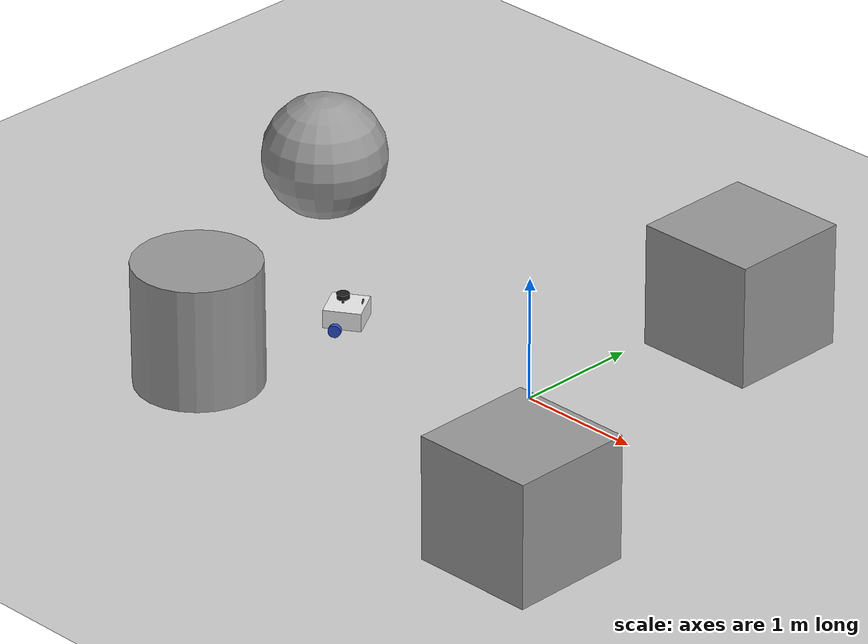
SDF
<sdf version="1.7">
 <world name="default">
  <light name="sun" type="directional">
   <pose>0 0 10 0 -0 0</pose>
   <diffuse>0.8 0.8 0.8 1</diffuse>
   <specular>0.2 0.2 0.2 1</specular>
   <attenuation>
    <range>1000</range>
    <constant>0.9</constant>
    <linear>0.01</linear>
    <quadratic>0.001</quadratic>
   </attenuation>
   <direction>-0.5 0.1 -0.9</direction>
   <spot><inner_angle>0</inner_angle><outer_angle>0</outer_angle><falloff>0</falloff></spot>
  </light>
  <model name="ground_plane">
   <static>1</static>
   <link name="link">
    <collision name="collision">
     <geometry><plane><normal>0 0 1</normal><size>100 100</size></plane></geometry>
     <surface>
      <contact><collide_bitmask>65535</collide_bitmask></contact>
      <friction><ode><mu>100</mu><mu2>50</mu2></ode></friction>
     </surface>
    </collision>
    <visual name="visual">
     <cast_shadows>0</cast_shadows>
     <geometry><plane><normal>0 0 1</normal><size>100 100</size></plane></geometry>
     <material>
      <script><uri>file://media/materials/scripts/gazebo.material</uri><name>Gazebo/Grey</name></script>
     </material>
    </visual>
   </link>
  </model>
  <gravity>0 0 -9.8</gravity>
  <magnetic_field>6e-06 2.3e-05 -4.2e-05</magnetic_field>
  <atmosphere type="adiabatic"/>
  <physics type="ode">
   <max_step_size>0.001</max_step_size>
   <real_time_factor>1</real_time_factor>
   <real_time_update_rate>1000</real_time_update_rate>
  </physics>
  <scene><ambient>0.4 0.4 0.4 1</ambient><background>0.7 0.7 0.7 1</background><shadows>1</shadows></scene>
  <audio><device>default</device></audio>
  <spherical_coordinates>
   <surface_model>EARTH_WGS84</surface_model>
   <latitude_deg>0</latitude_deg>
   <longitude_deg>0</longitude_deg>
   <elevation>0</elevation>
   <heading_deg>0</heading_deg>
  </spherical_coordinates>
  <model name="my_bot">
   <link name="base_link">
    <inertial>
     <pose>0.046885 0 0.09623 0 -0 0</pose>
     <mass>0.61</mass>
     <inertia>
      <ixx>0.00643156</ixx>
      <ixy>0</ixy>
      <ixz>0.000410764</ixz>
      <iyy>0.00658504</iyy>
      <iyz>0</iyz>
      <izz>0.00778848</izz>
     </inertia>
    </inertial>
    <collision name="base_link_fixed_joint_lump__chassis_collision">
     <pose>0.05 0 0.075 0 -0 0</pose>
     <geometry><box><size>0.3 0.3 0.15</size></box></geometry>
    </collision>
    <collision name="base_link_fixed_joint_lump__caster_wheel_collision_1">
     <pose>0.14 0 0 0 -0 0</pose>
     <geometry><sphere><radius>0.05</radius></sphere></geometry>
     <surface><friction><ode><mu>0.001</mu><mu2>0.001</mu2></ode></friction></surface>
    </collision>
    <collision name="base_link_fixed_joint_lump__laser_frame_collision_2">
     <pose>0.022 0 0.212 0 -0 0</pose>
     <geometry><cylinder><length>0.04</length><radius>0.05</radius></cylinder></geometry>
    </collision>
    <visual name="base_link_fixed_joint_lump__chassis_visual">
     <pose>0.05 0 0.075 0 -0 0</pose>
     <geometry><box><size>0.3 0.3 0.15</size></box></geometry>
     <material>
      <script><name>Gazebo/White</name><uri>file://media/materials/scripts/gazebo.material</uri></script>
     </material>
    </visual>
    <visual name="base_link_fixed_joint_lump__camera_link_visual_1">
     <pose>0.176 0 0.181 0 0.18 0</pose>
     <geometry><box><size>0.01 0.03 0.03</size></box></geometry>
     <material>
      <script><name>Gazebo/Black</name><uri>file://media/materials/scripts/gazebo.material</uri></script>
     </material>
    </visual>
    <visual name="base_link_fixed_joint_lump__camera_link_visual_2">
     <pose>0.167049 0 0.131808 0 0.18 0</pose>
     <geometry><cylinder><length>0.1</length><radius>0.002</radius></cylinder></geometry>
     <material>
      <script><name>Gazebo/Black</name><uri>file://media/materials/scripts/gazebo.material</uri></script>
     </material>
    </visual>
    <visual name="base_link_fixed_joint_lump__caster_wheel_visual_3">
     <pose>0.14 0 0 0 -0 0</pose>
     <geometry><sphere><radius>0.05</radius></sphere></geometry>
     <material>
      <script><name>Gazebo/Black</name><uri>file://media/materials/scripts/gazebo.material</uri></script>
     </material>
    </visual>
    <visual name="base_link_fixed_joint_lump__laser_frame_visual_4">
     <pose>0.022 0 0.212 0 -0 0</pose>
     <geometry><cylinder><length>0.04</length><radius>0.05</radius></cylinder></geometry>
     <material>
      <script><name>Gazebo/Black</name><uri>file://media/materials/scripts/gazebo.material</uri></script>
     </material>
    </visual>
    <visual name="base_link_fixed_joint_lump__laser_frame_visual_5">
     <pose>0.022 0 0.162 0 -0 0</pose>
     <geometry><cylinder><length>0.1</length><radius>0.01</radius></cylinder></geometry>
     <material>
      <script><name>Gazebo/Black</name><uri>file://media/materials/scripts/gazebo.material</uri></script>
     </material>
    </visual>
    <sensor name="camera" type="camera">
     <visualize>1</visualize>
     <update_rate>10</update_rate>
     <camera>
      <horizontal_fov>1.089</horizontal_fov>
      <image><format>R8G8B8</format><width>640</width><height>480</height></image>
      <clip><near>0.05</near><far>8</far></clip>
     </camera>
     <plugin name="camera_controller" filename="libgazebo_ros_camera.so">
      <frame_name>camera_link</frame_name>
     </plugin>
     <pose>0.176 0 0.181 0 0.18 0</pose>
    </sensor>
    <sensor name="laser" type="ray">
     <visualize>0</visualize>
     <update_rate>10</update_rate>
     <ray>
      <scan>
       <horizontal>
        <samples>360</samples>
        <min_angle>-3.14</min_angle>
        <max_angle>3.14</max_angle>
        <resolution>1</resolution>
       </horizontal>
       <vertical><samples>1</samples><min_angle>0</min_angle><max_angle>0</max_angle></vertical>
      </scan>
      <range><min>0.3</min><max>12</max></range>
     </ray>
     <plugin name="laser_controller" filename="libgazebo_ros_ray_sensor.so">
      <ros><remapping>~/out:=scan</remapping></ros>
      <output_type>sensor_msgs/LaserScan</output_type>
      <frame_name>laser_frame</frame_name>
     </plugin>
     <pose>0.022 0 0.212 0 -0 0</pose>
    </sensor>
   </link>
   <joint name="left_wheel_joint" type="revolute">
    <pose relative_to="base_link">0 0.175 0 -1.5708 0 0</pose>
    <parent>base_link</parent>
    <child>left_wheel</child>
    <axis>
     <xyz>0 0 1</xyz>
     <limit><lower>-1e+16</lower><upper>1e+16</upper></limit>
     <dynamics><spring_reference>0</spring_reference><spring_stiffness>0</spring_stiffness></dynamics>
    </axis>
   </joint>
   <link name="left_wheel">
    <pose relative_to="left_wheel_joint">0 0 0 0 -0 0</pose>
    <inertial>
     <mass>0.1</mass>
     <inertia>
      <ixx>7.58333e-05</ixx>
      <ixy>0</ixy>
      <ixz>0</ixz>
      <iyy>7.58333e-05</iyy>
      <iyz>0</iyz>
      <izz>0.000125</izz>
     </inertia>
    </inertial>
    <collision name="left_wheel_collision">
     <geometry><cylinder><length>0.04</length><radius>0.05</radius></cylinder></geometry>
    </collision>
    <visual name="left_wheel_visual">
     <geometry><cylinder><length>0.04</length><radius>0.05</radius></cylinder></geometry>
     <material>
      <script><name>Gazebo/Blue</name><uri>file://media/materials/scripts/gazebo.material</uri></script>
     </material>
    </visual>
   </link>
   <joint name="right_wheel_joint" type="revolute">
    <pose relative_to="base_link">0 -0.175 0 1.5708 -0 0</pose>
    <parent>base_link</parent>
    <child>right_wheel</child>
    <axis>
     <xyz>0 0 1</xyz>
     <limit><lower>-1e+16</lower><upper>1e+16</upper></limit>
     <dynamics><spring_reference>0</spring_reference><spring_stiffness>0</spring_stiffness></dynamics>
    </axis>
   </joint>
   <link name="right_wheel">
    <pose relative_to="right_wheel_joint">0 0 0 0 -0 0</pose>
    <inertial>
     <mass>0.1</mass>
     <inertia>
      <ixx>7.58333e-05</ixx>
      <ixy>0</ixy>
      <ixz>0</ixz>
      <iyy>7.58333e-05</iyy>
      <iyz>0</iyz>
      <izz>0.000125</izz>
     </inertia>
    </inertial>
    <collision name="right_wheel_collision">
     <geometry><cylinder><length>0.04</length><radius>0.05</radius></cylinder></geometry>
    </collision>
    <visual name="right_wheel_visual">
     <geometry><cylinder><length>0.04</length><radius>0.05</radius></cylinder></geometry>
     <material>
      <script><name>Gazebo/Blue</name><uri>file://media/materials/scripts/gazebo.material</uri></script>
     </material>
    </visual>
   </link>
   <static>0</static>
   <plugin name="diff_drive" filename="libgazebo_ros_diff_drive.so">
    <left_joint>left_wheel_joint</left_joint>
    <right_joint>right_wheel_joint</right_joint>
    <wheel_separation>0.35</wheel_separation>
    <wheel_diameter>0.1</wheel_diameter>
    <max_wheel_torque>200</max_wheel_torque>
    <max_wheel_acceleration>10.0</max_wheel_acceleration>
    <command_topic>cmd_vel</command_topic>
    <odometry_frame>odom</odometry_frame>
    <robot_base_frame>base_link</robot_base_frame>
    <publish_odom>1</publish_odom>
    <publish_odom_tf>1</publish_odom_tf>
    <publish_wheel_tf>1</publish_wheel_tf>
   </plugin>
   <pose>-1.80335 -0.196872 0.05 0 1e-05 0.547456</pose>
  </model>
  <model name="unit_sphere">
   <pose>-3.21529 1.0185 0.5 0 -0 0</pose>
   <link name="link">
    <inertial>
     <mass>1</mass>
     <inertia><ixx>0.1</ixx><ixy>0</ixy><ixz>0</ixz><iyy>0.1</iyy><iyz>0</iyz><izz>0.1</izz></inertia>
    </inertial>
    <collision name="collision"><geometry><sphere><radius>0.5</radius></sphere></geometry></collision>
    <visual name="visual">
     <geometry><sphere><radius>0.5</radius></sphere></geometry>
     <material>
      <script><name>Gazebo/Grey</name><uri>file://media/materials/scripts/gazebo.material</uri></script>
     </material>
    </visual>
   </link>
  </model>
  <model name="unit_cylinder">
   <pose>-1.94429 -1.52791 0.499997 3e-06 4e-06 -0</pose>
   <link name="link">
    <inertial>
     <mass>1</mass>
     <inertia><ixx>0.145833</ixx><ixy>0</ixy><ixz>0</ixz><iyy>0.145833</iyy><iyz>0</iyz><izz>0.125</izz></inertia>
    </inertial>
    <collision name="collision">
     <geometry><cylinder><radius>0.5</radius><length>1</length></cylinder></geometry>
    </collision>
    <visual name="visual">
     <geometry><cylinder><radius>0.5</radius><length>1</length></cylinder></geometry>
     <material>
      <script><name>Gazebo/Grey</name><uri>file://media/materials/scripts/gazebo.material</uri></script>
     </material>
    </visual>
   </link>
  </model>
  <model name="unit_box">
   <pose>0.518251 1.71795 0.499995 -1e-05 -0 0</pose>
   <link name="link">
    <inertial>
     <mass>1</mass>
     <inertia>
      <ixx>0.166667</ixx>
      <ixy>0</ixy>
      <ixz>0</ixz>
      <iyy>0.166667</iyy>
      <iyz>0</iyz>
      <izz>0.166667</izz>
     </inertia>
    </inertial>
    <collision name="collision"><geometry><box><size>1 1 1</size></box></geometry></collision>
    <visual name="visual">
     <geometry><box><size>1 1 1</size></box></geometry>
     <material>
      <script><name>Gazebo/Grey</name><uri>file://media/materials/scripts/gazebo.material</uri></script>
     </material>
    </visual>
   </link>
  </model>
  <model name="unit_box_0">
   <pose>1.58974 -1.72009 0.5 0 -0 0</pose>
   <link name="link">
    <inertial>
     <mass>1</mass>
     <inertia>
      <ixx>0.166667</ixx>
      <ixy>0</ixy>
      <ixz>0</ixz>
      <iyy>0.166667</iyy>
      <iyz>0</iyz>
      <izz>0.166667</izz>
     </inertia>
    </inertial>
    <collision name="collision"><geometry><box><size>1 1 1</size></box></geometry></collision>
    <visual name="visual">
     <geometry><box><size>1 1 1</size></box></geometry>
     <material>
      <script><name>Gazebo/Grey</name><uri>file://media/materials/scripts/gazebo.material</uri></script>
     </material>
    </visual>
   </link>
  </model>
 </world>
</sdf>
